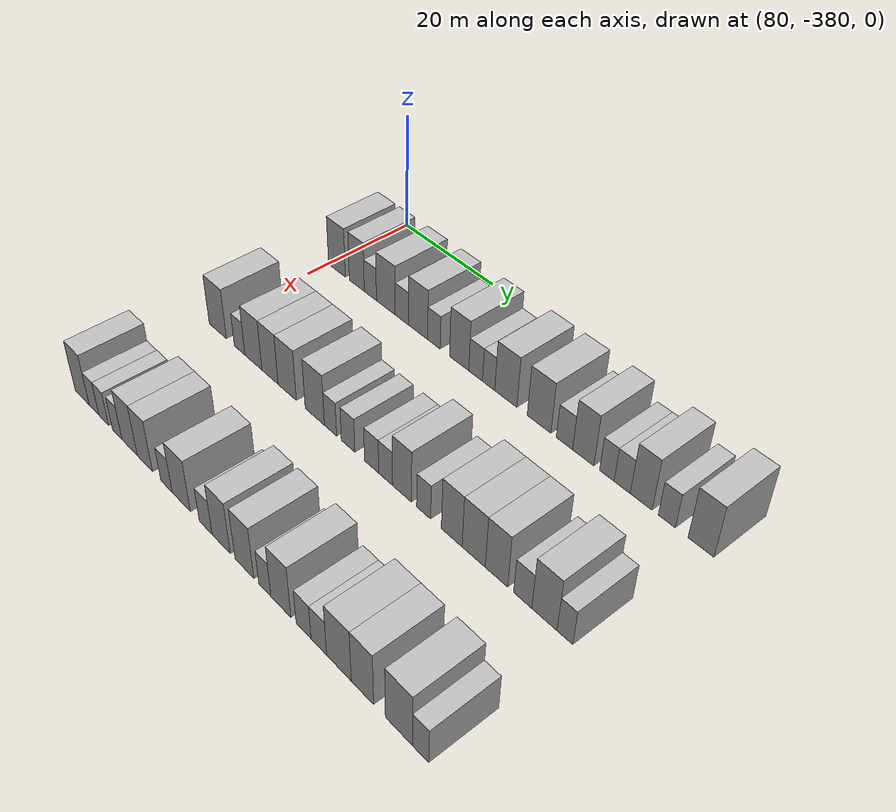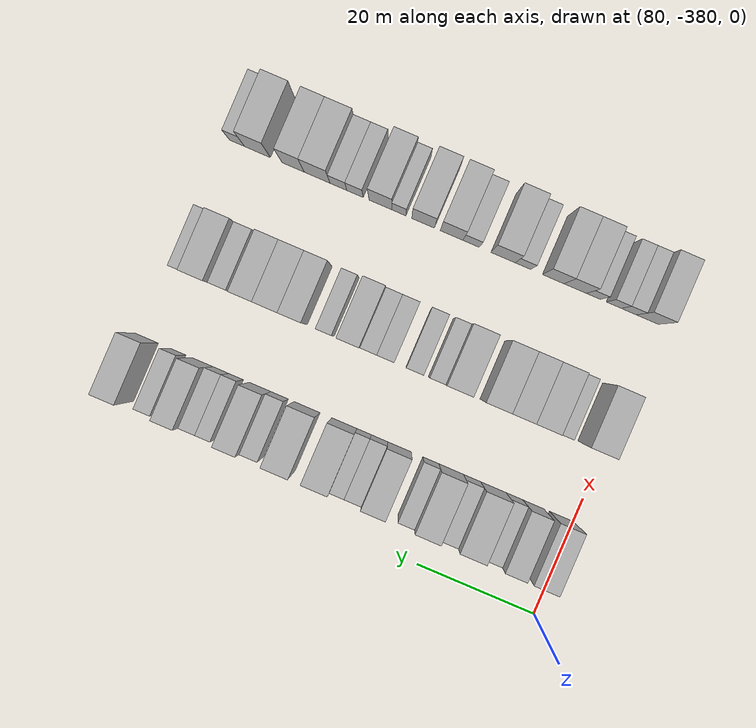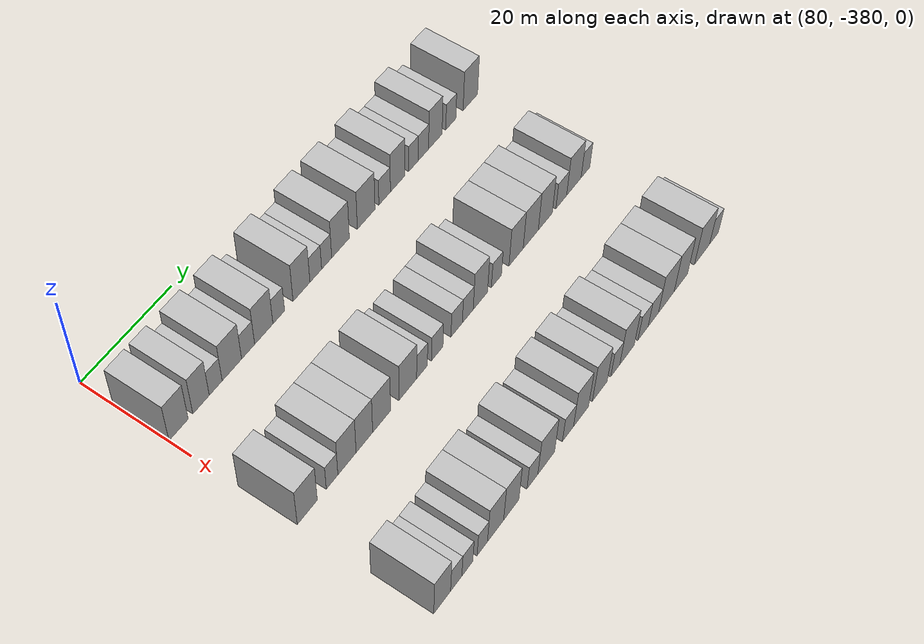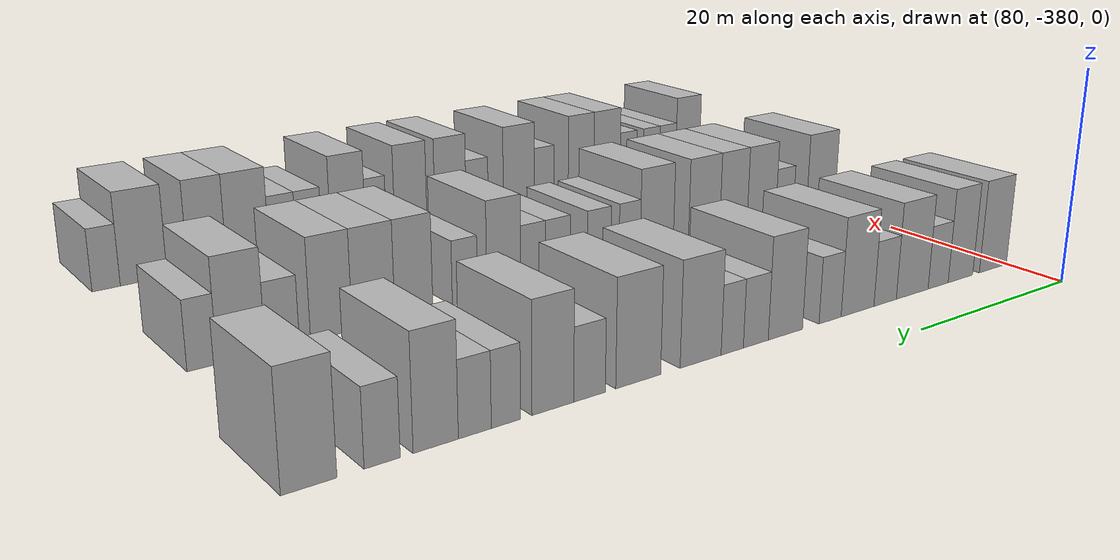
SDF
<sdf version="1.6">
 <world name="default">
  <model name="building_549">
   <static>1</static>
   <pose>91.0000 -377.9219 0 0.000000 0.000000 0.000000</pose>
   <link name="link">
    <pose>0 0 4.50 0 0 0</pose>
    <collision name="collision"><geometry><box><size>10.0000 4.1561 9.0000</size></box></geometry></collision>
    <visual name="visual">
     <cast_shadows>0</cast_shadows>
     <geometry><box><size>10.0000 4.1561 9.0000</size></box></geometry>
     <material>
      <script>
       <uri>model://HANNAS_wall/materials/scripts</uri>
       <uri>model://HANNAS_wall/materials/textures</uri>
       <name>vrc/HANNAS_wall</name>
      </script>
     </material>
    </visual>
   </link>
  </model>
  <model name="building_550">
   <static>1</static>
   <pose>91.0000 -373.0409 0 0.000000 0.000000 0.000000</pose>
   <link name="link">
    <pose>0 0 4.50 0 0 0</pose>
    <collision name="collision"><geometry><box><size>10.0000 3.6060 9.0000</size></box></geometry></collision>
    <visual name="visual">
     <cast_shadows>0</cast_shadows>
     <geometry><box><size>10.0000 3.6060 9.0000</size></box></geometry>
     <material>
      <script>
       <uri>model://HANNAS_wall/materials/scripts</uri>
       <uri>model://HANNAS_wall/materials/textures</uri>
       <name>vrc/HANNAS_wall</name>
      </script>
     </material>
    </visual>
   </link>
  </model>
  <model name="building_551">
   <static>1</static>
   <pose>91.0000 -369.8032 0 0.000000 0.000000 0.000000</pose>
   <link name="link">
    <pose>0 0 3.00 0 0 0</pose>
    <collision name="collision"><geometry><box><size>10.0000 2.8692 6.0000</size></box></geometry></collision>
    <visual name="visual">
     <cast_shadows>0</cast_shadows>
     <geometry><box><size>10.0000 2.8692 6.0000</size></box></geometry>
     <material>
      <script>
       <uri>model://HANNAS_wall/materials/scripts</uri>
       <uri>model://HANNAS_wall/materials/textures</uri>
       <name>vrc/HANNAS_wall</name>
      </script>
     </material>
    </visual>
   </link>
  </model>
  <model name="building_552">
   <static>1</static>
   <pose>91.0000 -366.1778 0 0.000000 0.000000 0.000000</pose>
   <link name="link">
    <pose>0 0 4.50 0 0 0</pose>
    <collision name="collision"><geometry><box><size>10.0000 4.3816 9.0000</size></box></geometry></collision>
    <visual name="visual">
     <cast_shadows>0</cast_shadows>
     <geometry><box><size>10.0000 4.3816 9.0000</size></box></geometry>
     <material>
      <script>
       <uri>model://HANNAS_wall/materials/scripts</uri>
       <uri>model://HANNAS_wall/materials/textures</uri>
       <name>vrc/HANNAS_wall</name>
      </script>
     </material>
    </visual>
   </link>
  </model>
  <model name="building_553">
   <static>1</static>
   <pose>91.0000 -362.4953 0 0.000000 0.000000 0.000000</pose>
   <link name="link">
    <pose>0 0 3.00 0 0 0</pose>
    <collision name="collision"><geometry><box><size>10.0000 2.9835 6.0000</size></box></geometry></collision>
    <visual name="visual">
     <cast_shadows>0</cast_shadows>
     <geometry><box><size>10.0000 2.9835 6.0000</size></box></geometry>
     <material>
      <script>
       <uri>model://HANNAS_wall/materials/scripts</uri>
       <uri>model://HANNAS_wall/materials/textures</uri>
       <name>vrc/HANNAS_wall</name>
      </script>
     </material>
    </visual>
   </link>
  </model>
  <model name="building_554">
   <static>1</static>
   <pose>91.0000 -358.8935 0 0.000000 0.000000 0.000000</pose>
   <link name="link">
    <pose>0 0 4.50 0 0 0</pose>
    <collision name="collision"><geometry><box><size>10.0000 4.2200 9.0000</size></box></geometry></collision>
    <visual name="visual">
     <cast_shadows>0</cast_shadows>
     <geometry><box><size>10.0000 4.2200 9.0000</size></box></geometry>
     <material>
      <script>
       <uri>model://HANNAS_wall/materials/scripts</uri>
       <uri>model://HANNAS_wall/materials/textures</uri>
       <name>vrc/HANNAS_wall</name>
      </script>
     </material>
    </visual>
   </link>
  </model>
  <model name="building_555">
   <static>1</static>
   <pose>91.0000 -355.4104 0 0.000000 0.000000 0.000000</pose>
   <link name="link">
    <pose>0 0 3.00 0 0 0</pose>
    <collision name="collision"><geometry><box><size>10.0000 2.7461 6.0000</size></box></geometry></collision>
    <visual name="visual">
     <cast_shadows>0</cast_shadows>
     <geometry><box><size>10.0000 2.7461 6.0000</size></box></geometry>
     <material>
      <script>
       <uri>model://HANNAS_wall/materials/scripts</uri>
       <uri>model://HANNAS_wall/materials/textures</uri>
       <name>vrc/HANNAS_wall</name>
      </script>
     </material>
    </visual>
   </link>
  </model>
  <model name="building_556">
   <static>1</static>
   <pose>91.0000 -350.0208 0 0.000000 0.000000 0.000000</pose>
   <link name="link">
    <pose>0 0 4.50 0 0 0</pose>
    <collision name="collision"><geometry><box><size>10.0000 4.0331 9.0000</size></box></geometry></collision>
    <visual name="visual">
     <cast_shadows>0</cast_shadows>
     <geometry><box><size>10.0000 4.0331 9.0000</size></box></geometry>
     <material>
      <script>
       <uri>model://HANNAS_wall/materials/scripts</uri>
       <uri>model://HANNAS_wall/materials/textures</uri>
       <name>vrc/HANNAS_wall</name>
      </script>
     </material>
    </visual>
   </link>
  </model>
  <model name="building_557">
   <static>1</static>
   <pose>91.0000 -346.5902 0 0.000000 0.000000 0.000000</pose>
   <link name="link">
    <pose>0 0 3.00 0 0 0</pose>
    <collision name="collision"><geometry><box><size>10.0000 2.8282 6.0000</size></box></geometry></collision>
    <visual name="visual">
     <cast_shadows>0</cast_shadows>
     <geometry><box><size>10.0000 2.8282 6.0000</size></box></geometry>
     <material>
      <script>
       <uri>model://HANNAS_wall/materials/scripts</uri>
       <uri>model://HANNAS_wall/materials/textures</uri>
       <name>vrc/HANNAS_wall</name>
      </script>
     </material>
    </visual>
   </link>
  </model>
  <model name="building_558">
   <static>1</static>
   <pose>91.0000 -343.9477 0 0.000000 0.000000 0.000000</pose>
   <link name="link">
    <pose>0 0 3.00 0 0 0</pose>
    <collision name="collision"><geometry><box><size>10.0000 2.4568 6.0000</size></box></geometry></collision>
    <visual name="visual">
     <cast_shadows>0</cast_shadows>
     <geometry><box><size>10.0000 2.4568 6.0000</size></box></geometry>
     <material>
      <script>
       <uri>model://HANNAS_wall/materials/scripts</uri>
       <uri>model://HANNAS_wall/materials/textures</uri>
       <name>vrc/HANNAS_wall</name>
      </script>
     </material>
    </visual>
   </link>
  </model>
  <model name="building_559">
   <static>1</static>
   <pose>91.0000 -340.5372 0 0.000000 0.000000 0.000000</pose>
   <link name="link">
    <pose>0 0 4.50 0 0 0</pose>
    <collision name="collision"><geometry><box><size>10.0000 4.3641 9.0000</size></box></geometry></collision>
    <visual name="visual">
     <cast_shadows>0</cast_shadows>
     <geometry><box><size>10.0000 4.3641 9.0000</size></box></geometry>
     <material>
      <script>
       <uri>model://HANNAS_wall/materials/scripts</uri>
       <uri>model://HANNAS_wall/materials/textures</uri>
       <name>vrc/HANNAS_wall</name>
      </script>
     </material>
    </visual>
   </link>
  </model>
  <model name="building_560">
   <static>1</static>
   <pose>91.0000 -334.1257 0 0.000000 0.000000 0.000000</pose>
   <link name="link">
    <pose>0 0 4.50 0 0 0</pose>
    <collision name="collision"><geometry><box><size>10.0000 4.4591 9.0000</size></box></geometry></collision>
    <visual name="visual">
     <cast_shadows>0</cast_shadows>
     <geometry><box><size>10.0000 4.4591 9.0000</size></box></geometry>
     <material>
      <script>
       <uri>model://HANNAS_wall/materials/scripts</uri>
       <uri>model://HANNAS_wall/materials/textures</uri>
       <name>vrc/HANNAS_wall</name>
      </script>
     </material>
    </visual>
   </link>
  </model>
  <model name="building_561">
   <static>1</static>
   <pose>91.0000 -329.4115 0 0.000000 0.000000 0.000000</pose>
   <link name="link">
    <pose>0 0 3.00 0 0 0</pose>
    <collision name="collision"><geometry><box><size>10.0000 2.9692 6.0000</size></box></geometry></collision>
    <visual name="visual">
     <cast_shadows>0</cast_shadows>
     <geometry><box><size>10.0000 2.9692 6.0000</size></box></geometry>
     <material>
      <script>
       <uri>model://HANNAS_wall/materials/scripts</uri>
       <uri>model://HANNAS_wall/materials/textures</uri>
       <name>vrc/HANNAS_wall</name>
      </script>
     </material>
    </visual>
   </link>
  </model>
  <model name="building_562">
   <static>1</static>
   <pose>91.0000 -326.0352 0 0.000000 0.000000 0.000000</pose>
   <link name="link">
    <pose>0 0 4.50 0 0 0</pose>
    <collision name="collision"><geometry><box><size>10.0000 3.7835 9.0000</size></box></geometry></collision>
    <visual name="visual">
     <cast_shadows>0</cast_shadows>
     <geometry><box><size>10.0000 3.7835 9.0000</size></box></geometry>
     <material>
      <script>
       <uri>model://HANNAS_wall/materials/scripts</uri>
       <uri>model://HANNAS_wall/materials/textures</uri>
       <name>vrc/HANNAS_wall</name>
      </script>
     </material>
    </visual>
   </link>
  </model>
  <model name="building_563">
   <static>1</static>
   <pose>91.0000 -321.8857 0 0.000000 0.000000 0.000000</pose>
   <link name="link">
    <pose>0 0 3.00 0 0 0</pose>
    <collision name="collision"><geometry><box><size>10.0000 2.5154 6.0000</size></box></geometry></collision>
    <visual name="visual">
     <cast_shadows>0</cast_shadows>
     <geometry><box><size>10.0000 2.5154 6.0000</size></box></geometry>
     <material>
      <script>
       <uri>model://HANNAS_wall/materials/scripts</uri>
       <uri>model://HANNAS_wall/materials/textures</uri>
       <name>vrc/HANNAS_wall</name>
      </script>
     </material>
    </visual>
   </link>
  </model>
  <model name="building_564">
   <static>1</static>
   <pose>91.0000 -319.2521 0 0.000000 0.000000 0.000000</pose>
   <link name="link">
    <pose>0 0 3.00 0 0 0</pose>
    <collision name="collision"><geometry><box><size>10.0000 2.7519 6.0000</size></box></geometry></collision>
    <visual name="visual">
     <cast_shadows>0</cast_shadows>
     <geometry><box><size>10.0000 2.7519 6.0000</size></box></geometry>
     <material>
      <script>
       <uri>model://HANNAS_wall/materials/scripts</uri>
       <uri>model://HANNAS_wall/materials/textures</uri>
       <name>vrc/HANNAS_wall</name>
      </script>
     </material>
    </visual>
   </link>
  </model>
  <model name="building_565">
   <static>1</static>
   <pose>91.0000 -316.0614 0 0.000000 0.000000 0.000000</pose>
   <link name="link">
    <pose>0 0 4.50 0 0 0</pose>
    <collision name="collision"><geometry><box><size>10.0000 3.6294 9.0000</size></box></geometry></collision>
    <visual name="visual">
     <cast_shadows>0</cast_shadows>
     <geometry><box><size>10.0000 3.6294 9.0000</size></box></geometry>
     <material>
      <script>
       <uri>model://HANNAS_wall/materials/scripts</uri>
       <uri>model://HANNAS_wall/materials/textures</uri>
       <name>vrc/HANNAS_wall</name>
      </script>
     </material>
    </visual>
   </link>
  </model>
  <model name="building_566">
   <static>1</static>
   <pose>91.0000 -311.8686 0 0.000000 0.000000 0.000000</pose>
   <link name="link">
    <pose>0 0 3.00 0 0 0</pose>
    <collision name="collision"><geometry><box><size>10.0000 2.7562 6.0000</size></box></geometry></collision>
    <visual name="visual">
     <cast_shadows>0</cast_shadows>
     <geometry><box><size>10.0000 2.7562 6.0000</size></box></geometry>
     <material>
      <script>
       <uri>model://HANNAS_wall/materials/scripts</uri>
       <uri>model://HANNAS_wall/materials/textures</uri>
       <name>vrc/HANNAS_wall</name>
      </script>
     </material>
    </visual>
   </link>
  </model>
  <model name="building_567">
   <static>1</static>
   <pose>91.0000 -306.4826 0 0.000000 0.000000 0.000000</pose>
   <link name="link">
    <pose>0 0 4.50 0 0 0</pose>
    <collision name="collision"><geometry><box><size>10.0000 4.0159 9.0000</size></box></geometry></collision>
    <visual name="visual">
     <cast_shadows>0</cast_shadows>
     <geometry><box><size>10.0000 4.0159 9.0000</size></box></geometry>
     <material>
      <script>
       <uri>model://HANNAS_wall/materials/scripts</uri>
       <uri>model://HANNAS_wall/materials/textures</uri>
       <name>vrc/HANNAS_wall</name>
      </script>
     </material>
    </visual>
   </link>
  </model>
  <model name="building_737">
   <static>1</static>
   <pose>113.0000 -377.7885 0 0.000000 0.000000 0.000000</pose>
   <link name="link">
    <pose>0 0 4.50 0 0 0</pose>
    <collision name="collision"><geometry><box><size>10.0000 4.4231 9.0000</size></box></geometry></collision>
    <visual name="visual">
     <cast_shadows>0</cast_shadows>
     <geometry><box><size>10.0000 4.4231 9.0000</size></box></geometry>
     <material>
      <script>
       <uri>model://HANNAS_wall/materials/scripts</uri>
       <uri>model://HANNAS_wall/materials/textures</uri>
       <name>vrc/HANNAS_wall</name>
      </script>
     </material>
    </visual>
   </link>
  </model>
  <model name="building_738">
   <static>1</static>
   <pose>113.0000 -372.2635 0 0.000000 0.000000 0.000000</pose>
   <link name="link">
    <pose>0 0 3.00 0 0 0</pose>
    <collision name="collision"><geometry><box><size>10.0000 2.6268 6.0000</size></box></geometry></collision>
    <visual name="visual">
     <cast_shadows>0</cast_shadows>
     <geometry><box><size>10.0000 2.6268 6.0000</size></box></geometry>
     <material>
      <script>
       <uri>model://HANNAS_wall/materials/scripts</uri>
       <uri>model://HANNAS_wall/materials/textures</uri>
       <name>vrc/HANNAS_wall</name>
      </script>
     </material>
    </visual>
   </link>
  </model>
  <model name="building_739">
   <static>1</static>
   <pose>113.0000 -368.8712 0 0.000000 0.000000 0.000000</pose>
   <link name="link">
    <pose>0 0 4.50 0 0 0</pose>
    <collision name="collision"><geometry><box><size>10.0000 4.1579 9.0000</size></box></geometry></collision>
    <visual name="visual">
     <cast_shadows>0</cast_shadows>
     <geometry><box><size>10.0000 4.1579 9.0000</size></box></geometry>
     <material>
      <script>
       <uri>model://HANNAS_wall/materials/scripts</uri>
       <uri>model://HANNAS_wall/materials/textures</uri>
       <name>vrc/HANNAS_wall</name>
      </script>
     </material>
    </visual>
   </link>
  </model>
  <model name="building_740">
   <static>1</static>
   <pose>113.0000 -364.8702 0 0.000000 0.000000 0.000000</pose>
   <link name="link">
    <pose>0 0 4.50 0 0 0</pose>
    <collision name="collision"><geometry><box><size>10.0000 3.8440 9.0000</size></box></geometry></collision>
    <visual name="visual">
     <cast_shadows>0</cast_shadows>
     <geometry><box><size>10.0000 3.8440 9.0000</size></box></geometry>
     <material>
      <script>
       <uri>model://HANNAS_wall/materials/scripts</uri>
       <uri>model://HANNAS_wall/materials/textures</uri>
       <name>vrc/HANNAS_wall</name>
      </script>
     </material>
    </visual>
   </link>
  </model>
  <model name="building_741">
   <static>1</static>
   <pose>113.0000 -360.8357 0 0.000000 0.000000 0.000000</pose>
   <link name="link">
    <pose>0 0 4.50 0 0 0</pose>
    <collision name="collision"><geometry><box><size>10.0000 4.2250 9.0000</size></box></geometry></collision>
    <visual name="visual">
     <cast_shadows>0</cast_shadows>
     <geometry><box><size>10.0000 4.2250 9.0000</size></box></geometry>
     <material>
      <script>
       <uri>model://HANNAS_wall/materials/scripts</uri>
       <uri>model://HANNAS_wall/materials/textures</uri>
       <name>vrc/HANNAS_wall</name>
      </script>
     </material>
    </visual>
   </link>
  </model>
  <model name="building_742">
   <static>1</static>
   <pose>113.0000 -354.5903 0 0.000000 0.000000 0.000000</pose>
   <link name="link">
    <pose>0 0 4.50 0 0 0</pose>
    <collision name="collision"><geometry><box><size>10.0000 4.2657 9.0000</size></box></geometry></collision>
    <visual name="visual">
     <cast_shadows>0</cast_shadows>
     <geometry><box><size>10.0000 4.2657 9.0000</size></box></geometry>
     <material>
      <script>
       <uri>model://HANNAS_wall/materials/scripts</uri>
       <uri>model://HANNAS_wall/materials/textures</uri>
       <name>vrc/HANNAS_wall</name>
      </script>
     </material>
    </visual>
   </link>
  </model>
  <model name="building_743">
   <static>1</static>
   <pose>113.0000 -351.1392 0 0.000000 0.000000 0.000000</pose>
   <link name="link">
    <pose>0 0 3.00 0 0 0</pose>
    <collision name="collision"><geometry><box><size>10.0000 2.6366 6.0000</size></box></geometry></collision>
    <visual name="visual">
     <cast_shadows>0</cast_shadows>
     <geometry><box><size>10.0000 2.6366 6.0000</size></box></geometry>
     <material>
      <script>
       <uri>model://HANNAS_wall/materials/scripts</uri>
       <uri>model://HANNAS_wall/materials/textures</uri>
       <name>vrc/HANNAS_wall</name>
      </script>
     </material>
    </visual>
   </link>
  </model>
  <model name="building_744">
   <static>1</static>
   <pose>113.0000 -347.3938 0 0.000000 0.000000 0.000000</pose>
   <link name="link">
    <pose>0 0 3.00 0 0 0</pose>
    <collision name="collision"><geometry><box><size>10.0000 2.8541 6.0000</size></box></geometry></collision>
    <visual name="visual">
     <cast_shadows>0</cast_shadows>
     <geometry><box><size>10.0000 2.8541 6.0000</size></box></geometry>
     <material>
      <script>
       <uri>model://HANNAS_wall/materials/scripts</uri>
       <uri>model://HANNAS_wall/materials/textures</uri>
       <name>vrc/HANNAS_wall</name>
      </script>
     </material>
    </visual>
   </link>
  </model>
  <model name="building_745">
   <static>1</static>
   <pose>113.0000 -342.5250 0 0.000000 0.000000 0.000000</pose>
   <link name="link">
    <pose>0 0 3.00 0 0 0</pose>
    <collision name="collision"><geometry><box><size>10.0000 2.8836 6.0000</size></box></geometry></collision>
    <visual name="visual">
     <cast_shadows>0</cast_shadows>
     <geometry><box><size>10.0000 2.8836 6.0000</size></box></geometry>
     <material>
      <script>
       <uri>model://HANNAS_wall/materials/scripts</uri>
       <uri>model://HANNAS_wall/materials/textures</uri>
       <name>vrc/HANNAS_wall</name>
      </script>
     </material>
    </visual>
   </link>
  </model>
  <model name="building_746">
   <static>1</static>
   <pose>113.0000 -339.6986 0 0.000000 0.000000 0.000000</pose>
   <link name="link">
    <pose>0 0 3.00 0 0 0</pose>
    <collision name="collision"><geometry><box><size>10.0000 2.7690 6.0000</size></box></geometry></collision>
    <visual name="visual">
     <cast_shadows>0</cast_shadows>
     <geometry><box><size>10.0000 2.7690 6.0000</size></box></geometry>
     <material>
      <script>
       <uri>model://HANNAS_wall/materials/scripts</uri>
       <uri>model://HANNAS_wall/materials/textures</uri>
       <name>vrc/HANNAS_wall</name>
      </script>
     </material>
    </visual>
   </link>
  </model>
  <model name="building_747">
   <static>1</static>
   <pose>113.0000 -336.4681 0 0.000000 0.000000 0.000000</pose>
   <link name="link">
    <pose>0 0 4.50 0 0 0</pose>
    <collision name="collision"><geometry><box><size>10.0000 3.6921 9.0000</size></box></geometry></collision>
    <visual name="visual">
     <cast_shadows>0</cast_shadows>
     <geometry><box><size>10.0000 3.6921 9.0000</size></box></geometry>
     <material>
      <script>
       <uri>model://HANNAS_wall/materials/scripts</uri>
       <uri>model://HANNAS_wall/materials/textures</uri>
       <name>vrc/HANNAS_wall</name>
      </script>
     </material>
    </visual>
   </link>
  </model>
  <model name="building_748">
   <static>1</static>
   <pose>113.0000 -332.3001 0 0.000000 0.000000 0.000000</pose>
   <link name="link">
    <pose>0 0 3.00 0 0 0</pose>
    <collision name="collision"><geometry><box><size>10.0000 2.6438 6.0000</size></box></geometry></collision>
    <visual name="visual">
     <cast_shadows>0</cast_shadows>
     <geometry><box><size>10.0000 2.6438 6.0000</size></box></geometry>
     <material>
      <script>
       <uri>model://HANNAS_wall/materials/scripts</uri>
       <uri>model://HANNAS_wall/materials/textures</uri>
       <name>vrc/HANNAS_wall</name>
      </script>
     </material>
    </visual>
   </link>
  </model>
  <model name="building_749">
   <static>1</static>
   <pose>113.0000 -327.0858 0 0.000000 0.000000 0.000000</pose>
   <link name="link">
    <pose>0 0 4.50 0 0 0</pose>
    <collision name="collision"><geometry><box><size>10.0000 3.7849 9.0000</size></box></geometry></collision>
    <visual name="visual">
     <cast_shadows>0</cast_shadows>
     <geometry><box><size>10.0000 3.7849 9.0000</size></box></geometry>
     <material>
      <script>
       <uri>model://HANNAS_wall/materials/scripts</uri>
       <uri>model://HANNAS_wall/materials/textures</uri>
       <name>vrc/HANNAS_wall</name>
      </script>
     </material>
    </visual>
   </link>
  </model>
  <model name="building_750">
   <static>1</static>
   <pose>113.0000 -323.1448 0 0.000000 0.000000 0.000000</pose>
   <link name="link">
    <pose>0 0 4.50 0 0 0</pose>
    <collision name="collision"><geometry><box><size>10.0000 4.0970 9.0000</size></box></geometry></collision>
    <visual name="visual">
     <cast_shadows>0</cast_shadows>
     <geometry><box><size>10.0000 4.0970 9.0000</size></box></geometry>
     <material>
      <script>
       <uri>model://HANNAS_wall/materials/scripts</uri>
       <uri>model://HANNAS_wall/materials/textures</uri>
       <name>vrc/HANNAS_wall</name>
      </script>
     </material>
    </visual>
   </link>
  </model>
  <model name="building_751">
   <static>1</static>
   <pose>113.0000 -319.1742 0 0.000000 0.000000 0.000000</pose>
   <link name="link">
    <pose>0 0 4.50 0 0 0</pose>
    <collision name="collision"><geometry><box><size>10.0000 3.8440 9.0000</size></box></geometry></collision>
    <visual name="visual">
     <cast_shadows>0</cast_shadows>
     <geometry><box><size>10.0000 3.8440 9.0000</size></box></geometry>
     <material>
      <script>
       <uri>model://HANNAS_wall/materials/scripts</uri>
       <uri>model://HANNAS_wall/materials/textures</uri>
       <name>vrc/HANNAS_wall</name>
      </script>
     </material>
    </visual>
   </link>
  </model>
  <model name="building_752">
   <static>1</static>
   <pose>113.0000 -314.7525 0 0.000000 0.000000 0.000000</pose>
   <link name="link">
    <pose>0 0 3.00 0 0 0</pose>
    <collision name="collision"><geometry><box><size>10.0000 2.9993 6.0000</size></box></geometry></collision>
    <visual name="visual">
     <cast_shadows>0</cast_shadows>
     <geometry><box><size>10.0000 2.9993 6.0000</size></box></geometry>
     <material>
      <script>
       <uri>model://HANNAS_wall/materials/scripts</uri>
       <uri>model://HANNAS_wall/materials/textures</uri>
       <name>vrc/HANNAS_wall</name>
      </script>
     </material>
    </visual>
   </link>
  </model>
  <model name="building_753">
   <static>1</static>
   <pose>113.0000 -311.2126 0 0.000000 0.000000 0.000000</pose>
   <link name="link">
    <pose>0 0 4.50 0 0 0</pose>
    <collision name="collision"><geometry><box><size>10.0000 4.0805 9.0000</size></box></geometry></collision>
    <visual name="visual">
     <cast_shadows>0</cast_shadows>
     <geometry><box><size>10.0000 4.0805 9.0000</size></box></geometry>
     <material>
      <script>
       <uri>model://HANNAS_wall/materials/scripts</uri>
       <uri>model://HANNAS_wall/materials/textures</uri>
       <name>vrc/HANNAS_wall</name>
      </script>
     </material>
    </visual>
   </link>
  </model>
  <model name="building_754">
   <static>1</static>
   <pose>113.0000 -307.9309 0 0.000000 0.000000 0.000000</pose>
   <link name="link">
    <pose>0 0 3.00 0 0 0</pose>
    <collision name="collision"><geometry><box><size>10.0000 2.4829 6.0000</size></box></geometry></collision>
    <visual name="visual">
     <cast_shadows>0</cast_shadows>
     <geometry><box><size>10.0000 2.4829 6.0000</size></box></geometry>
     <material>
      <script>
       <uri>model://HANNAS_wall/materials/scripts</uri>
       <uri>model://HANNAS_wall/materials/textures</uri>
       <name>vrc/HANNAS_wall</name>
      </script>
     </material>
    </visual>
   </link>
  </model>
  <model name="building_930">
   <static>1</static>
   <pose>135.0000 -378.0882 0 0.000000 0.000000 0.000000</pose>
   <link name="link">
    <pose>0 0 4.50 0 0 0</pose>
    <collision name="collision"><geometry><box><size>10.0000 3.8237 9.0000</size></box></geometry></collision>
    <visual name="visual">
     <cast_shadows>0</cast_shadows>
     <geometry><box><size>10.0000 3.8237 9.0000</size></box></geometry>
     <material>
      <script>
       <uri>model://HANNAS_wall/materials/scripts</uri>
       <uri>model://HANNAS_wall/materials/textures</uri>
       <name>vrc/HANNAS_wall</name>
      </script>
     </material>
    </visual>
   </link>
  </model>
  <model name="building_931">
   <static>1</static>
   <pose>135.0000 -374.8769 0 0.000000 0.000000 0.000000</pose>
   <link name="link">
    <pose>0 0 3.00 0 0 0</pose>
    <collision name="collision"><geometry><box><size>10.0000 2.5989 6.0000</size></box></geometry></collision>
    <visual name="visual">
     <cast_shadows>0</cast_shadows>
     <geometry><box><size>10.0000 2.5989 6.0000</size></box></geometry>
     <material>
      <script>
       <uri>model://HANNAS_wall/materials/scripts</uri>
       <uri>model://HANNAS_wall/materials/textures</uri>
       <name>vrc/HANNAS_wall</name>
      </script>
     </material>
    </visual>
   </link>
  </model>
  <model name="building_932">
   <static>1</static>
   <pose>135.0000 -372.3031 0 0.000000 0.000000 0.000000</pose>
   <link name="link">
    <pose>0 0 3.00 0 0 0</pose>
    <collision name="collision"><geometry><box><size>10.0000 2.5488 6.0000</size></box></geometry></collision>
    <visual name="visual">
     <cast_shadows>0</cast_shadows>
     <geometry><box><size>10.0000 2.5488 6.0000</size></box></geometry>
     <material>
      <script>
       <uri>model://HANNAS_wall/materials/scripts</uri>
       <uri>model://HANNAS_wall/materials/textures</uri>
       <name>vrc/HANNAS_wall</name>
      </script>
     </material>
    </visual>
   </link>
  </model>
  <model name="building_933">
   <static>1</static>
   <pose>135.0000 -368.8043 0 0.000000 0.000000 0.000000</pose>
   <link name="link">
    <pose>0 0 3.00 0 0 0</pose>
    <collision name="collision"><geometry><box><size>10.0000 2.4489 6.0000</size></box></geometry></collision>
    <visual name="visual">
     <cast_shadows>0</cast_shadows>
     <geometry><box><size>10.0000 2.4489 6.0000</size></box></geometry>
     <material>
      <script>
       <uri>model://HANNAS_wall/materials/scripts</uri>
       <uri>model://HANNAS_wall/materials/textures</uri>
       <name>vrc/HANNAS_wall</name>
      </script>
     </material>
    </visual>
   </link>
  </model>
  <model name="building_934">
   <static>1</static>
   <pose>135.0000 -365.6548 0 0.000000 0.000000 0.000000</pose>
   <link name="link">
    <pose>0 0 4.50 0 0 0</pose>
    <collision name="collision"><geometry><box><size>10.0000 3.8501 9.0000</size></box></geometry></collision>
    <visual name="visual">
     <cast_shadows>0</cast_shadows>
     <geometry><box><size>10.0000 3.8501 9.0000</size></box></geometry>
     <material>
      <script>
       <uri>model://HANNAS_wall/materials/scripts</uri>
       <uri>model://HANNAS_wall/materials/textures</uri>
       <name>vrc/HANNAS_wall</name>
      </script>
     </material>
    </visual>
   </link>
  </model>
  <model name="building_935">
   <static>1</static>
   <pose>135.0000 -361.8817 0 0.000000 0.000000 0.000000</pose>
   <link name="link">
    <pose>0 0 4.50 0 0 0</pose>
    <collision name="collision"><geometry><box><size>10.0000 3.6960 9.0000</size></box></geometry></collision>
    <visual name="visual">
     <cast_shadows>0</cast_shadows>
     <geometry><box><size>10.0000 3.6960 9.0000</size></box></geometry>
     <material>
      <script>
       <uri>model://HANNAS_wall/materials/scripts</uri>
       <uri>model://HANNAS_wall/materials/textures</uri>
       <name>vrc/HANNAS_wall</name>
      </script>
     </material>
    </visual>
   </link>
  </model>
  <model name="building_936">
   <static>1</static>
   <pose>135.0000 -356.6928 0 0.000000 0.000000 0.000000</pose>
   <link name="link">
    <pose>0 0 3.00 0 0 0</pose>
    <collision name="collision"><geometry><box><size>10.0000 2.6818 6.0000</size></box></geometry></collision>
    <visual name="visual">
     <cast_shadows>0</cast_shadows>
     <geometry><box><size>10.0000 2.6818 6.0000</size></box></geometry>
     <material>
      <script>
       <uri>model://HANNAS_wall/materials/scripts</uri>
       <uri>model://HANNAS_wall/materials/textures</uri>
       <name>vrc/HANNAS_wall</name>
      </script>
     </material>
    </visual>
   </link>
  </model>
  <model name="building_937">
   <static>1</static>
   <pose>135.0000 -353.2559 0 0.000000 0.000000 0.000000</pose>
   <link name="link">
    <pose>0 0 4.50 0 0 0</pose>
    <collision name="collision"><geometry><box><size>10.0000 4.1919 9.0000</size></box></geometry></collision>
    <visual name="visual">
     <cast_shadows>0</cast_shadows>
     <geometry><box><size>10.0000 4.1919 9.0000</size></box></geometry>
     <material>
      <script>
       <uri>model://HANNAS_wall/materials/scripts</uri>
       <uri>model://HANNAS_wall/materials/textures</uri>
       <name>vrc/HANNAS_wall</name>
      </script>
     </material>
    </visual>
   </link>
  </model>
  <model name="building_938">
   <static>1</static>
   <pose>135.0000 -347.7396 0 0.000000 0.000000 0.000000</pose>
   <link name="link">
    <pose>0 0 3.00 0 0 0</pose>
    <collision name="collision"><geometry><box><size>10.0000 2.8409 6.0000</size></box></geometry></collision>
    <visual name="visual">
     <cast_shadows>0</cast_shadows>
     <geometry><box><size>10.0000 2.8409 6.0000</size></box></geometry>
     <material>
      <script>
       <uri>model://HANNAS_wall/materials/scripts</uri>
       <uri>model://HANNAS_wall/materials/textures</uri>
       <name>vrc/HANNAS_wall</name>
      </script>
     </material>
    </visual>
   </link>
  </model>
  <model name="building_939">
   <static>1</static>
   <pose>135.0000 -344.3668 0 0.000000 0.000000 0.000000</pose>
   <link name="link">
    <pose>0 0 4.50 0 0 0</pose>
    <collision name="collision"><geometry><box><size>10.0000 3.9047 9.0000</size></box></geometry></collision>
    <visual name="visual">
     <cast_shadows>0</cast_shadows>
     <geometry><box><size>10.0000 3.9047 9.0000</size></box></geometry>
     <material>
      <script>
       <uri>model://HANNAS_wall/materials/scripts</uri>
       <uri>model://HANNAS_wall/materials/textures</uri>
       <name>vrc/HANNAS_wall</name>
      </script>
     </material>
    </visual>
   </link>
  </model>
  <model name="building_940">
   <static>1</static>
   <pose>135.0000 -339.4679 0 0.000000 0.000000 0.000000</pose>
   <link name="link">
    <pose>0 0 4.50 0 0 0</pose>
    <collision name="collision"><geometry><box><size>10.0000 3.8932 9.0000</size></box></geometry></collision>
    <visual name="visual">
     <cast_shadows>0</cast_shadows>
     <geometry><box><size>10.0000 3.8932 9.0000</size></box></geometry>
     <material>
      <script>
       <uri>model://HANNAS_wall/materials/scripts</uri>
       <uri>model://HANNAS_wall/materials/textures</uri>
       <name>vrc/HANNAS_wall</name>
      </script>
     </material>
    </visual>
   </link>
  </model>
  <model name="building_941">
   <static>1</static>
   <pose>135.0000 -335.3125 0 0.000000 0.000000 0.000000</pose>
   <link name="link">
    <pose>0 0 3.00 0 0 0</pose>
    <collision name="collision"><geometry><box><size>10.0000 2.4175 6.0000</size></box></geometry></collision>
    <visual name="visual">
     <cast_shadows>0</cast_shadows>
     <geometry><box><size>10.0000 2.4175 6.0000</size></box></geometry>
     <material>
      <script>
       <uri>model://HANNAS_wall/materials/scripts</uri>
       <uri>model://HANNAS_wall/materials/textures</uri>
       <name>vrc/HANNAS_wall</name>
      </script>
     </material>
    </visual>
   </link>
  </model>
  <model name="building_942">
   <static>1</static>
   <pose>135.0000 -332.1383 0 0.000000 0.000000 0.000000</pose>
   <link name="link">
    <pose>0 0 4.50 0 0 0</pose>
    <collision name="collision"><geometry><box><size>10.0000 3.9310 9.0000</size></box></geometry></collision>
    <visual name="visual">
     <cast_shadows>0</cast_shadows>
     <geometry><box><size>10.0000 3.9310 9.0000</size></box></geometry>
     <material>
      <script>
       <uri>model://HANNAS_wall/materials/scripts</uri>
       <uri>model://HANNAS_wall/materials/textures</uri>
       <name>vrc/HANNAS_wall</name>
      </script>
     </material>
    </visual>
   </link>
  </model>
  <model name="building_943">
   <static>1</static>
   <pose>135.0000 -327.7625 0 0.000000 0.000000 0.000000</pose>
   <link name="link">
    <pose>0 0 3.00 0 0 0</pose>
    <collision name="collision"><geometry><box><size>10.0000 2.8206 6.0000</size></box></geometry></collision>
    <visual name="visual">
     <cast_shadows>0</cast_shadows>
     <geometry><box><size>10.0000 2.8206 6.0000</size></box></geometry>
     <material>
      <script>
       <uri>model://HANNAS_wall/materials/scripts</uri>
       <uri>model://HANNAS_wall/materials/textures</uri>
       <name>vrc/HANNAS_wall</name>
      </script>
     </material>
    </visual>
   </link>
  </model>
  <model name="building_944">
   <static>1</static>
   <pose>135.0000 -324.9109 0 0.000000 0.000000 0.000000</pose>
   <link name="link">
    <pose>0 0 3.00 0 0 0</pose>
    <collision name="collision"><geometry><box><size>10.0000 2.8826 6.0000</size></box></geometry></collision>
    <visual name="visual">
     <cast_shadows>0</cast_shadows>
     <geometry><box><size>10.0000 2.8826 6.0000</size></box></geometry>
     <material>
      <script>
       <uri>model://HANNAS_wall/materials/scripts</uri>
       <uri>model://HANNAS_wall/materials/textures</uri>
       <name>vrc/HANNAS_wall</name>
      </script>
     </material>
    </visual>
   </link>
  </model>
  <model name="building_945">
   <static>1</static>
   <pose>135.0000 -321.2563 0 0.000000 0.000000 0.000000</pose>
   <link name="link">
    <pose>0 0 4.50 0 0 0</pose>
    <collision name="collision"><geometry><box><size>10.0000 4.4266 9.0000</size></box></geometry></collision>
    <visual name="visual">
     <cast_shadows>0</cast_shadows>
     <geometry><box><size>10.0000 4.4266 9.0000</size></box></geometry>
     <material>
      <script>
       <uri>model://HANNAS_wall/materials/scripts</uri>
       <uri>model://HANNAS_wall/materials/textures</uri>
       <name>vrc/HANNAS_wall</name>
      </script>
     </material>
    </visual>
   </link>
  </model>
  <model name="building_946">
   <static>1</static>
   <pose>135.0000 -317.1156 0 0.000000 0.000000 0.000000</pose>
   <link name="link">
    <pose>0 0 4.50 0 0 0</pose>
    <collision name="collision"><geometry><box><size>10.0000 3.8547 9.0000</size></box></geometry></collision>
    <visual name="visual">
     <cast_shadows>0</cast_shadows>
     <geometry><box><size>10.0000 3.8547 9.0000</size></box></geometry>
     <material>
      <script>
       <uri>model://HANNAS_wall/materials/scripts</uri>
       <uri>model://HANNAS_wall/materials/textures</uri>
       <name>vrc/HANNAS_wall</name>
      </script>
     </material>
    </visual>
   </link>
  </model>
  <model name="building_947">
   <static>1</static>
   <pose>135.0000 -310.9665 0 0.000000 0.000000 0.000000</pose>
   <link name="link">
    <pose>0 0 4.50 0 0 0</pose>
    <collision name="collision"><geometry><box><size>10.0000 4.4435 9.0000</size></box></geometry></collision>
    <visual name="visual">
     <cast_shadows>0</cast_shadows>
     <geometry><box><size>10.0000 4.4435 9.0000</size></box></geometry>
     <material>
      <script>
       <uri>model://HANNAS_wall/materials/scripts</uri>
       <uri>model://HANNAS_wall/materials/textures</uri>
       <name>vrc/HANNAS_wall</name>
      </script>
     </material>
    </visual>
   </link>
  </model>
  <model name="building_948">
   <static>1</static>
   <pose>135.0000 -307.4487 0 0.000000 0.000000 0.000000</pose>
   <link name="link">
    <pose>0 0 3.00 0 0 0</pose>
    <collision name="collision"><geometry><box><size>10.0000 2.5922 6.0000</size></box></geometry></collision>
    <visual name="visual">
     <cast_shadows>0</cast_shadows>
     <geometry><box><size>10.0000 2.5922 6.0000</size></box></geometry>
     <material>
      <script>
       <uri>model://HANNAS_wall/materials/scripts</uri>
       <uri>model://HANNAS_wall/materials/textures</uri>
       <name>vrc/HANNAS_wall</name>
      </script>
     </material>
    </visual>
   </link>
  </model>
 </world>
</sdf>
